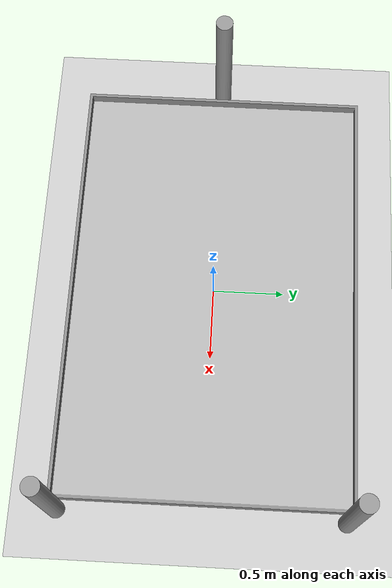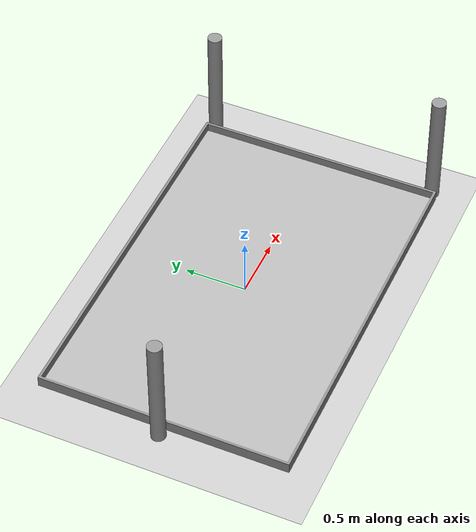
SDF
<sdf version="1.7">
 <world name="default">
  <light name="sun" type="directional">
   <pose>0 0 10 0 -0 0</pose>
   <diffuse>0.8 0.8 0.8 1</diffuse>
   <specular>0.2 0.2 0.2 1</specular>
   <attenuation>
    <range>1000</range>
    <constant>0.9</constant>
    <linear>0.01</linear>
    <quadratic>0.001</quadratic>
   </attenuation>
   <direction>-0.5 0.1 -0.9</direction>
   <spot><inner_angle>0</inner_angle><outer_angle>0</outer_angle><falloff>0</falloff></spot>
  </light>
  <model name="ground_plane">
   <static>1</static>
   <link name="link">
    <collision name="collision">
     <geometry><plane><normal>0 0 1</normal><size>100 100</size></plane></geometry>
     <surface>
      <contact><collide_bitmask>65535</collide_bitmask></contact>
      <friction><ode><mu>100</mu><mu2>50</mu2></ode></friction>
     </surface>
    </collision>
    <visual name="visual">
     <cast_shadows>0</cast_shadows>
     <geometry><plane><normal>0 0 1</normal><size>100 100</size></plane></geometry>
     <material>
      <script><uri>file://media/materials/scripts/gazebo.material</uri><name>Gazebo/Grey</name></script>
     </material>
    </visual>
   </link>
  </model>
  <model name="robot_table">
   <static>1</static>
   <link name="link">
    <collision name="collision">
     <geometry>
      <mesh><scale>1 1 1</scale><uri>model://robot_table/meshes/table_2024.dae</uri></mesh>
      <surface><friction><ode><mu>1.2</mu><mu2>1.2</mu2></ode></friction></surface>
     </geometry>
    </collision>
    <visual name="visual">
     <geometry><mesh><scale>1 1 1</scale><uri>model://robot_table/meshes/table_2024.dae</uri></mesh></geometry>
    </visual>
   </link>
   <pose>0 0 0.03 0 -0 0</pose>
  </model>
  <gravity>0 0 -9.8</gravity>
  <magnetic_field>6e-06 2.3e-05 -4.2e-05</magnetic_field>
  <atmosphere type="adiabatic"/>
  <physics type="ode">
   <max_step_size>0.001</max_step_size>
   <real_time_factor>1</real_time_factor>
   <real_time_update_rate>1000</real_time_update_rate>
  </physics>
  <scene><ambient>0.4 0.4 0.4 1</ambient><background>0.7 0.7 0.7 1</background><shadows>1</shadows></scene>
  <audio><device>default</device></audio>
  <spherical_coordinates>
   <surface_model>EARTH_WGS84</surface_model>
   <latitude_deg>0</latitude_deg>
   <longitude_deg>0</longitude_deg>
   <elevation>0</elevation>
   <heading_deg>0</heading_deg>
  </spherical_coordinates>
  <model name="testwtable2">
   <link name="link_0">
    <inertial>
     <mass>0.0139551</mass>
     <inertia>
      <ixx>0.0011751</ixx>
      <ixy>0</ixy>
      <ixz>0</ixz>
      <iyy>0.0011751</iyy>
      <iyz>0</iyz>
      <izz>2.43438e-05</izz>
     </inertia>
    </inertial>
    <pose>1.0584 -0.961202 0 0 -0 0</pose>
    <visual name="visual">
     <geometry><cylinder><radius>0.0590668</radius><length>1</length></cylinder></geometry>
     <material>
      <lighting>1</lighting>
      <script><uri>file://media/materials/scripts/gazebo.material</uri><name>Gazebo/Grey</name></script>
      <shader type="pixel"/>
     </material>
    </visual>
    <collision name="collision">
     <geometry><cylinder><radius>0.059067</radius><length>1</length></cylinder></geometry>
     <surface>
      <friction>
       <ode><mu>1</mu><mu2>1</mu2><fdir1>0 0 0</fdir1><slip1>0</slip1><slip2>0</slip2></ode>
       <torsional>
        <coefficient>1</coefficient>
        <patch_radius>0</patch_radius>
        <surface_radius>0</surface_radius>
        <use_patch_radius>1</use_patch_radius>
        <ode><slip>0</slip></ode>
       </torsional>
      </friction>
      <bounce><restitution_coefficient>0</restitution_coefficient><threshold>1e+06</threshold></bounce>
      <contact>
       <collide_without_contact>0</collide_without_contact>
       <collide_without_contact_bitmask>1</collide_without_contact_bitmask>
       <collide_bitmask>1</collide_bitmask>
       <ode>
        <soft_cfm>0</soft_cfm>
        <soft_erp>0.2</soft_erp>
        <kp>1e+13</kp>
        <kd>1</kd>
        <max_vel>0.01</max_vel>
        <min_depth>0</min_depth>
       </ode>
       <bullet>
        <split_impulse>1</split_impulse>
        <split_impulse_penetration_threshold>-0.01</split_impulse_penetration_threshold>
        <soft_cfm>0</soft_cfm>
        <soft_erp>0.2</soft_erp>
        <kp>1e+13</kp>
        <kd>1</kd>
       </bullet>
      </contact>
     </surface>
    </collision>
   </link>
   <link name="link_0_clone">
    <inertial>
     <mass>0.0139551</mass>
     <inertia>
      <ixx>0.0011751</ixx>
      <ixy>0</ixy>
      <ixz>0</ixz>
      <iyy>0.0011751</iyy>
      <iyz>0</iyz>
      <izz>2.43438e-05</izz>
     </inertia>
    </inertial>
    <pose>1.05473 0.965342 0 0 -0 0</pose>
    <visual name="visual">
     <geometry><cylinder><radius>0.0590668</radius><length>1</length></cylinder></geometry>
     <material>
      <lighting>1</lighting>
      <script><uri>file://media/materials/scripts/gazebo.material</uri><name>Gazebo/Grey</name></script>
      <shader type="pixel"/>
     </material>
    </visual>
    <collision name="collision">
     <geometry><cylinder><radius>0.059067</radius><length>1</length></cylinder></geometry>
     <surface>
      <friction>
       <ode><mu>1</mu><mu2>1</mu2><fdir1>0 0 0</fdir1><slip1>0</slip1><slip2>0</slip2></ode>
       <torsional>
        <coefficient>1</coefficient>
        <patch_radius>0</patch_radius>
        <surface_radius>0</surface_radius>
        <use_patch_radius>1</use_patch_radius>
        <ode><slip>0</slip></ode>
       </torsional>
      </friction>
      <bounce><restitution_coefficient>0</restitution_coefficient><threshold>1e+06</threshold></bounce>
      <contact>
       <collide_without_contact>0</collide_without_contact>
       <collide_without_contact_bitmask>1</collide_without_contact_bitmask>
       <collide_bitmask>1</collide_bitmask>
       <ode>
        <soft_cfm>0</soft_cfm>
        <soft_erp>0.2</soft_erp>
        <kp>1e+13</kp>
        <kd>1</kd>
        <max_vel>0.01</max_vel>
        <min_depth>0</min_depth>
       </ode>
       <bullet>
        <split_impulse>1</split_impulse>
        <split_impulse_penetration_threshold>-0.01</split_impulse_penetration_threshold>
        <soft_cfm>0</soft_cfm>
        <soft_erp>0.2</soft_erp>
        <kp>1e+13</kp>
        <kd>1</kd>
       </bullet>
      </contact>
     </surface>
    </collision>
   </link>
   <link name="link_0_clone_clone">
    <inertial>
     <mass>0.0139551</mass>
     <inertia>
      <ixx>0.0011751</ixx>
      <ixy>0</ixy>
      <ixz>0</ixz>
      <iyy>0.0011751</iyy>
      <iyz>0</iyz>
      <izz>2.43438e-05</izz>
     </inertia>
    </inertial>
    <pose>-2.11314 -0.00414 0 0 -0 0</pose>
    <visual name="visual">
     <geometry><cylinder><radius>0.0590668</radius><length>1</length></cylinder></geometry>
     <material>
      <lighting>1</lighting>
      <script><uri>file://media/materials/scripts/gazebo.material</uri><name>Gazebo/Grey</name></script>
      <shader type="pixel"/>
     </material>
    </visual>
    <collision name="collision">
     <geometry><cylinder><radius>0.059067</radius><length>1</length></cylinder></geometry>
     <surface>
      <friction>
       <ode><mu>1</mu><mu2>1</mu2><fdir1>0 0 0</fdir1><slip1>0</slip1><slip2>0</slip2></ode>
       <torsional>
        <coefficient>1</coefficient>
        <patch_radius>0</patch_radius>
        <surface_radius>0</surface_radius>
        <use_patch_radius>1</use_patch_radius>
        <ode><slip>0</slip></ode>
       </torsional>
      </friction>
      <bounce><restitution_coefficient>0</restitution_coefficient><threshold>1e+06</threshold></bounce>
      <contact>
       <collide_without_contact>0</collide_without_contact>
       <collide_without_contact_bitmask>1</collide_without_contact_bitmask>
       <collide_bitmask>1</collide_bitmask>
       <ode>
        <soft_cfm>0</soft_cfm>
        <soft_erp>0.2</soft_erp>
        <kp>1e+13</kp>
        <kd>1</kd>
        <max_vel>0.01</max_vel>
        <min_depth>0</min_depth>
       </ode>
       <bullet>
        <split_impulse>1</split_impulse>
        <split_impulse_penetration_threshold>-0.01</split_impulse_penetration_threshold>
        <soft_cfm>0</soft_cfm>
        <soft_erp>0.2</soft_erp>
        <kp>1e+13</kp>
        <kd>1</kd>
       </bullet>
      </contact>
     </surface>
    </collision>
   </link>
   <static>0</static>
   <pose>0.526677 -0.001858 0.5 0 -0 0</pose>
  </model>
 </world>
</sdf>
